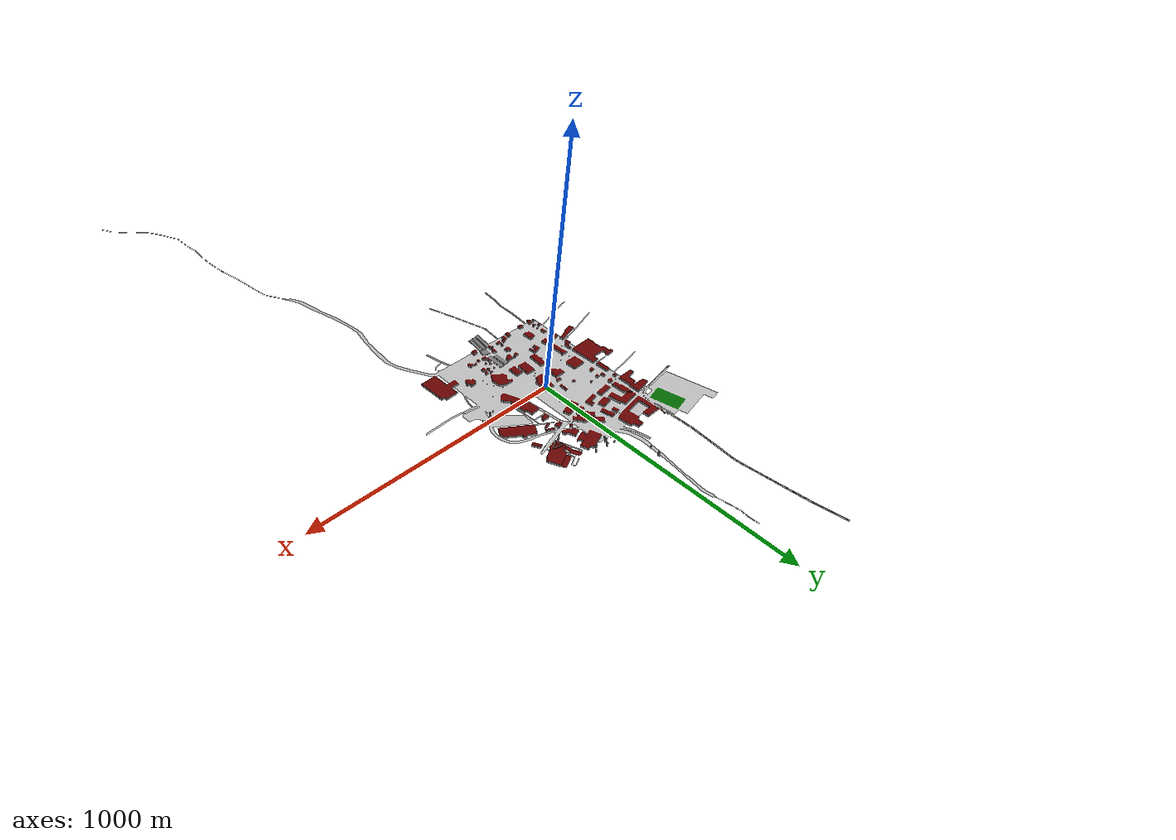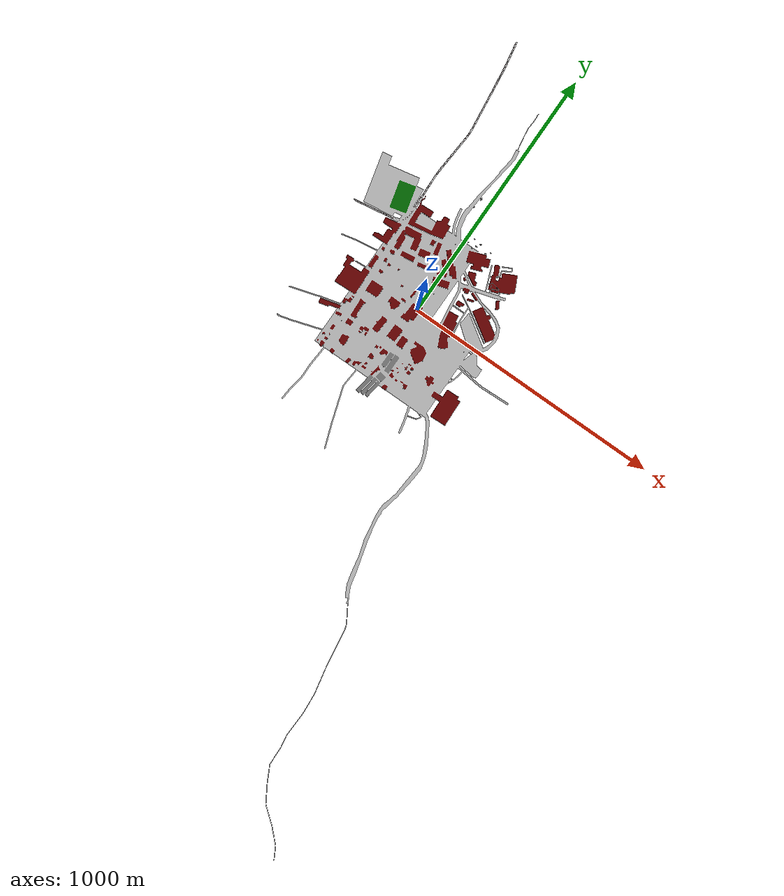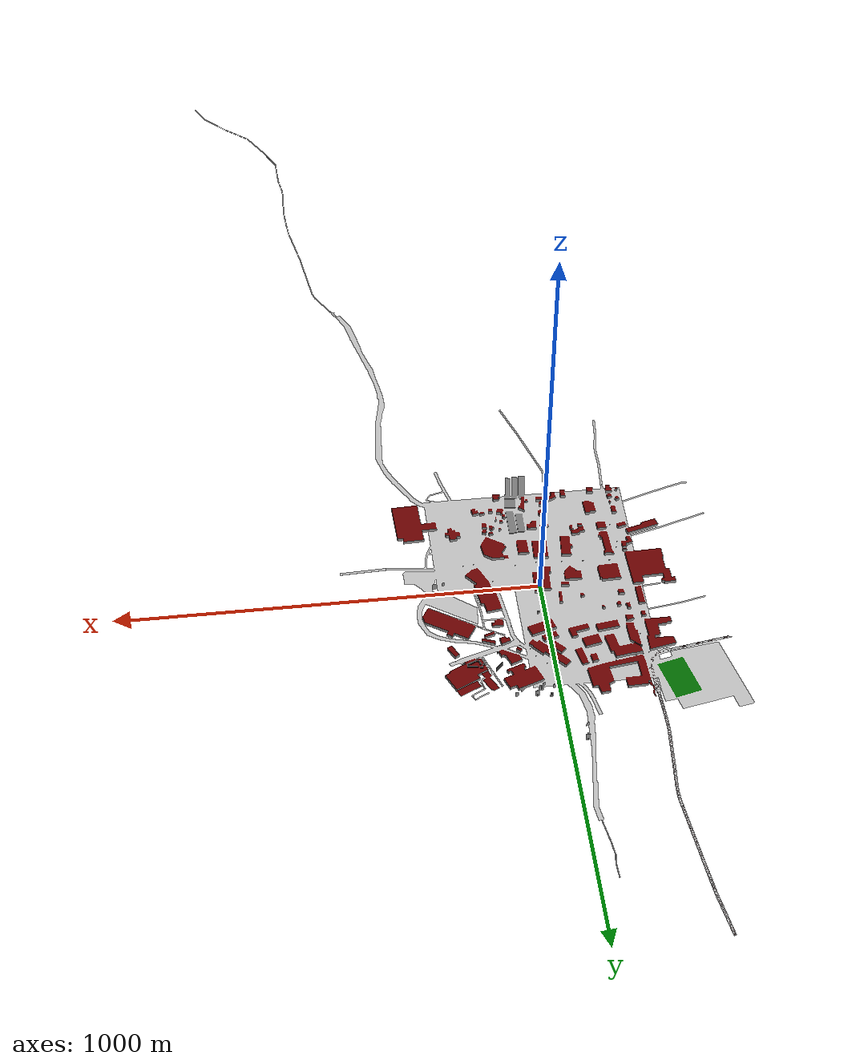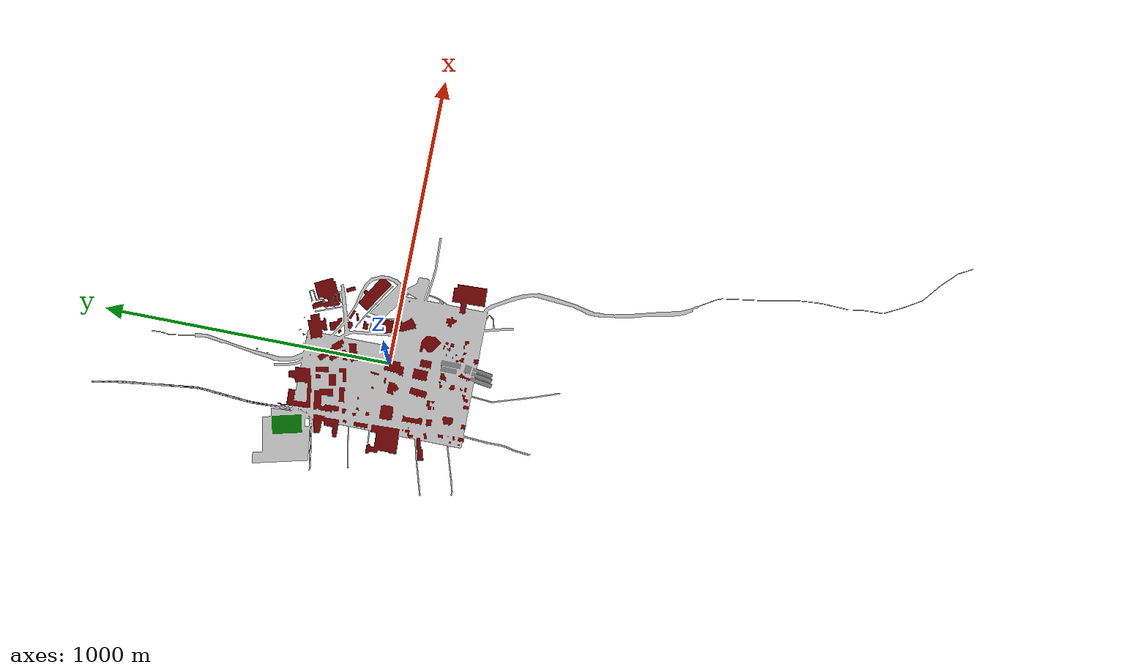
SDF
<?xml version="1.0" ?>
<sdf version="1.6">
  <model name="city_osm_roundabout">
    <static>true</static>
    <link name="link">
     <collision name="collision">
        <geometry>
          <mesh>
            <uri>model://city_osm_roundabout/meshes/model.dae</uri>
          </mesh>
        </geometry>
      </collision>
      <visual name="visual">
        <geometry>
          <mesh>
            <uri>model://city_osm_roundabout/meshes/model.dae</uri>
          </mesh>
        </geometry>
      </visual>
    </link>
  </model>
</sdf>
